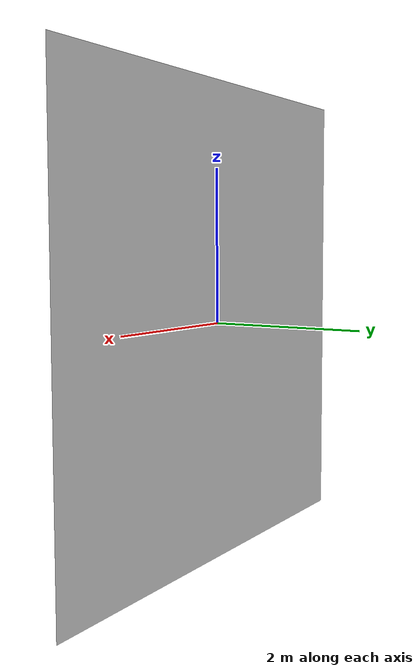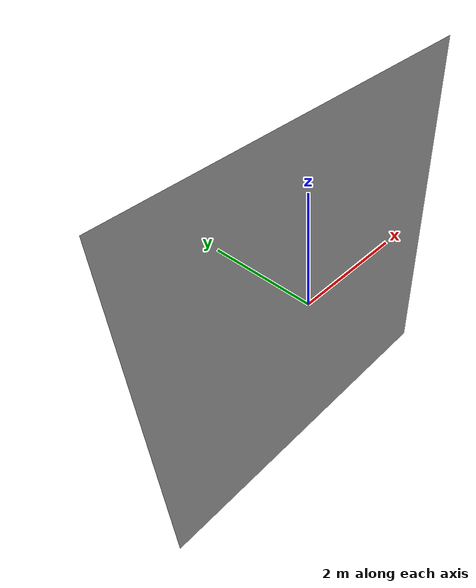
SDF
<?xml version="1.0" ?>
<sdf version="1.6">
  <model name="logotrc2">
    <static>true</static>
    <link name="link">

      <visual name="cube_visual">
        <geometry>
          <box>
            <size>6.25 0 6.25</size>
          </box>
        </geometry>
        <material>
          <script>
            <uri>model://logotrc2/materials/scripts/</uri>
            <uri>model://logotrc2/materials/textures/</uri>
            <name>logotrc2/FaceMaterial</name>
          </script>
        </material>
      </visual>
    </link>
  </model>
</sdf>
